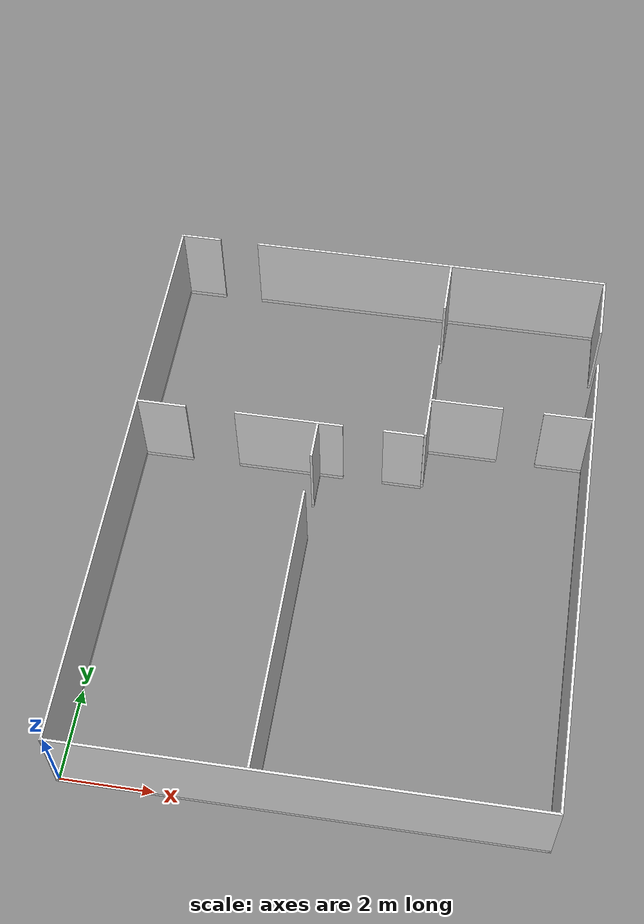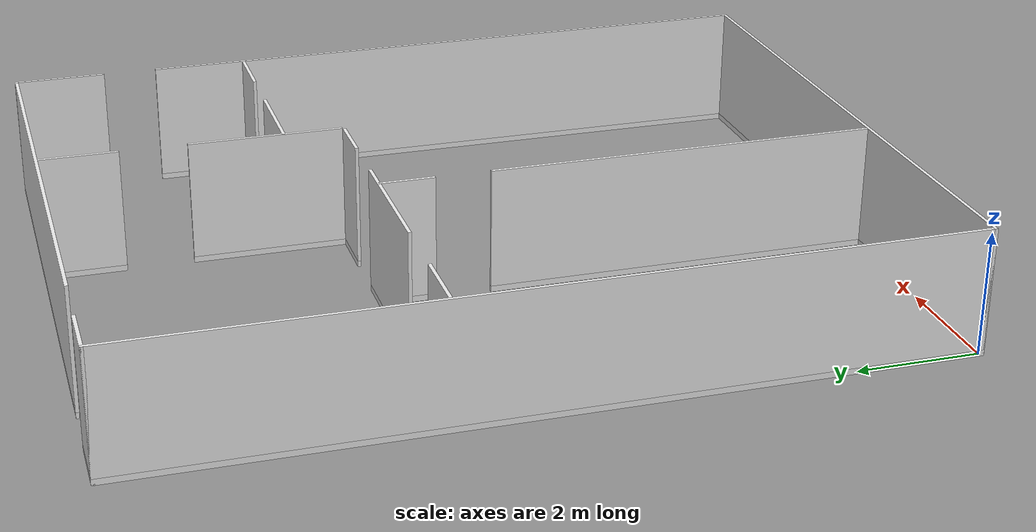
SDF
<sdf version="1.6">
 <world name="default">
  <model name="inside_wall">
   <link name="link">
    <inertial>
     <mass>50</mass>
     <inertia><ixx>1</ixx><ixy>0</ixy><ixz>0</ixz><iyy>1</iyy><iyz>0</iyz><izz>1</izz></inertia>
    </inertial>
    <visual name="x05y01_08_bottom_frame">
     <pose>4.075 3.215 0.05 0 -0 0</pose>
     <geometry><box><size>0.055 6.43 0.1</size></box></geometry>
     <material>
      <script><uri>model://base_materials/color/scripts</uri><name>hsr_color/white</name></script>
     </material>
    </visual>
    <collision name="x05y01_08_collision_bottom_frame">
     <pose>4.075 3.215 0.05 0 -0 0</pose>
     <geometry><box><size>0.055 6.43 0.1</size></box></geometry>
    </collision>
    <visual name="x05y01_08_wall">
     <pose>4.075 3.215 1.095 0 -0 0</pose>
     <geometry><box><size>0.055 6.43 1.99</size></box></geometry>
     <material>
      <script>
       <uri>model://base_materials/wall/scripts</uri>
       <uri>model://base_materials/wall/textures</uri>
       <name>wall/white_noise</name>
      </script>
     </material>
    </visual>
    <collision name="x05y01_08_collision_wall">
     <pose>4.075 3.215 1.095 0 -0 0</pose>
     <geometry><box><size>0.055 6.43 1.99</size></box></geometry>
    </collision>
    <visual name="x05y10_bottom_frame">
     <pose>4.075 7.78 0.05 0 -0 0</pose>
     <geometry><box><size>0.055 0.9 0.1</size></box></geometry>
     <material>
      <script><uri>model://base_materials/color/scripts</uri><name>hsr_color/white</name></script>
     </material>
    </visual>
    <collision name="x05y10_collision_bottom_frame">
     <pose>4.075 7.78 0.05 0 -0 0</pose>
     <geometry><box><size>0.055 0.9 0.1</size></box></geometry>
    </collision>
    <visual name="x05y10_wall">
     <pose>4.075 7.78 1.095 0 -0 0</pose>
     <geometry><box><size>0.055 0.9 1.99</size></box></geometry>
     <material>
      <script>
       <uri>model://base_materials/wall/scripts</uri>
       <uri>model://base_materials/wall/textures</uri>
       <name>wall/white_noise</name>
      </script>
     </material>
    </visual>
    <collision name="x05y10_collision_wall">
     <pose>4.075 7.78 1.095 0 -0 0</pose>
     <geometry><box><size>0.055 0.9 1.99</size></box></geometry>
    </collision>
    <visual name="x01_02_y09_bottom_frame">
     <pose>0.55 8.23 0.05 0 -0 1.5708</pose>
     <geometry><box><size>0.055 1.1 0.1</size></box></geometry>
     <material>
      <script><uri>model://base_materials/color/scripts</uri><name>hsr_color/white</name></script>
     </material>
    </visual>
    <collision name="x01_02_y09_collision_bottom_frame">
     <pose>0.55 8.23 0.05 0 -0 1.5708</pose>
     <geometry><box><size>0.055 1.1 0.1</size></box></geometry>
    </collision>
    <visual name="x01_02_y09_wall">
     <pose>0.55 8.23 1.095 0 -0 1.5708</pose>
     <geometry><box><size>0.055 1.1 1.99</size></box></geometry>
     <material>
      <script>
       <uri>model://base_materials/wall/scripts</uri>
       <uri>model://base_materials/wall/textures</uri>
       <name>wall/white_noise</name>
      </script>
     </material>
    </visual>
    <collision name="x01_02_y09_collision_wall">
     <pose>0.55 8.23 1.095 0 -0 1.5708</pose>
     <geometry><box><size>0.055 1.1 1.99</size></box></geometry>
    </collision>
    <visual name="x04_07_y09_bottom_frame">
     <pose>3.42 8.23 0.05 0 -0 1.5708</pose>
     <geometry><box><size>0.055 2.44 0.1</size></box></geometry>
     <material>
      <script><uri>model://base_materials/color/scripts</uri><name>hsr_color/white</name></script>
     </material>
    </visual>
    <collision name="x04_07_y09_collision_bottom_frame">
     <pose>3.42 8.23 0.05 0 -0 1.5708</pose>
     <geometry><box><size>0.055 2.44 0.1</size></box></geometry>
    </collision>
    <visual name="x04_07_y09_wall">
     <pose>3.42 8.23 1.095 0 -0 1.5708</pose>
     <geometry><box><size>0.055 2.44 1.99</size></box></geometry>
     <material>
      <script>
       <uri>model://base_materials/wall/scripts</uri>
       <uri>model://base_materials/wall/textures</uri>
       <name>wall/white_noise</name>
      </script>
     </material>
    </visual>
    <collision name="x04_07_y09_collision_wall">
     <pose>3.42 8.23 1.095 0 -0 1.5708</pose>
     <geometry><box><size>0.055 2.44 1.99</size></box></geometry>
    </collision>
    <visual name="x08y10a_bottom_frame">
     <pose>5.9925 8.23 0.05 0 -0 1.5708</pose>
     <geometry><box><size>0.055 0.9 0.1</size></box></geometry>
     <material>
      <script><uri>model://base_materials/color/scripts</uri><name>hsr_color/white</name></script>
     </material>
    </visual>
    <collision name="x08y10a_collision_bottom_frame">
     <pose>5.9925 8.23 0.05 0 -0 1.5708</pose>
     <geometry><box><size>0.055 0.9 0.1</size></box></geometry>
    </collision>
    <visual name="x08y10a_wall">
     <pose>5.9925 8.23 1.095 0 -0 1.5708</pose>
     <geometry><box><size>0.055 0.9 1.99</size></box></geometry>
     <material>
      <script>
       <uri>model://base_materials/wall/scripts</uri>
       <uri>model://base_materials/wall/textures</uri>
       <name>wall/white_noise</name>
      </script>
     </material>
    </visual>
    <collision name="x08y10a_collision_wall">
     <pose>5.9925 8.23 1.095 0 -0 1.5708</pose>
     <geometry><box><size>0.055 0.9 1.99</size></box></geometry>
    </collision>
    <visual name="x08y10a_bottom_frame">
     <pose>5.9925 8.23 0.05 0 -0 1.5708</pose>
     <geometry><box><size>0.055 0.9 0.1</size></box></geometry>
     <material>
      <script><uri>model://base_materials/color/scripts</uri><name>hsr_color/white</name></script>
     </material>
    </visual>
    <collision name="x08y10a_collision_bottom_frame">
     <pose>5.9925 8.23 0.05 0 -0 1.5708</pose>
     <geometry><box><size>0.055 0.9 0.1</size></box></geometry>
    </collision>
    <visual name="x08y10a_wall">
     <pose>5.9925 8.23 1.095 0 -0 1.5708</pose>
     <geometry><box><size>0.055 0.9 1.99</size></box></geometry>
     <material>
      <script>
       <uri>model://base_materials/wall/scripts</uri>
       <uri>model://base_materials/wall/textures</uri>
       <name>wall/white_noise</name>
      </script>
     </material>
    </visual>
    <collision name="x08y10a_collision_wall">
     <pose>5.9925 8.23 1.095 0 -0 1.5708</pose>
     <geometry><box><size>0.055 0.9 1.99</size></box></geometry>
    </collision>
    <visual name="x08y14_15_bottom_frame">
     <pose>6.47 12.54 0.05 0 -0 0</pose>
     <geometry><box><size>0.055 1.28 0.1</size></box></geometry>
     <material>
      <script><uri>model://base_materials/color/scripts</uri><name>hsr_color/white</name></script>
     </material>
    </visual>
    <collision name="x08y14_15_collision_bottom_frame">
     <pose>6.47 12.54 0.05 0 -0 0</pose>
     <geometry><box><size>0.055 1.28 0.1</size></box></geometry>
    </collision>
    <visual name="x08y14_15_wall">
     <pose>6.47 12.54 1.095 0 -0 0</pose>
     <geometry><box><size>0.055 1.28 1.99</size></box></geometry>
     <material>
      <script>
       <uri>model://base_materials/wall/scripts</uri>
       <uri>model://base_materials/wall/textures</uri>
       <name>wall/white_noise</name>
      </script>
     </material>
    </visual>
    <collision name="x08y14_15_collision_wall">
     <pose>6.47 12.54 1.095 0 -0 0</pose>
     <geometry><box><size>0.055 1.28 1.99</size></box></geometry>
    </collision>
    <visual name="x08y10b_12_bottom_frame">
     <pose>6.47 9.52875 0.05 0 -0 0</pose>
     <geometry><box><size>0.055 2.5425 0.1</size></box></geometry>
     <material>
      <script><uri>model://base_materials/color/scripts</uri><name>hsr_color/white</name></script>
     </material>
    </visual>
    <collision name="x08y10b_12_collision_bottom_frame">
     <pose>6.47 9.52875 0.05 0 -0 0</pose>
     <geometry><box><size>0.055 2.5425 0.1</size></box></geometry>
    </collision>
    <visual name="x08y10b_12_wall">
     <pose>6.47 9.52875 1.095 0 -0 0</pose>
     <geometry><box><size>0.055 2.5425 1.99</size></box></geometry>
     <material>
      <script>
       <uri>model://base_materials/wall/scripts</uri>
       <uri>model://base_materials/wall/textures</uri>
       <name>wall/white_noise</name>
      </script>
     </material>
    </visual>
    <collision name="x08y10b_12_collision_wall">
     <pose>6.47 9.52875 1.095 0 -0 0</pose>
     <geometry><box><size>0.055 2.5425 1.99</size></box></geometry>
    </collision>
    <visual name="x08_09y11b_bottom_frame">
     <pose>7.284 9.23 0.05 0 -0 1.5708</pose>
     <geometry><box><size>0.055 1.632 0.1</size></box></geometry>
     <material>
      <script><uri>model://base_materials/color/scripts</uri><name>hsr_color/white</name></script>
     </material>
    </visual>
    <collision name="x08_09y11b_collision_bottom_frame">
     <pose>7.284 9.23 0.05 0 -0 1.5708</pose>
     <geometry><box><size>0.055 1.632 0.1</size></box></geometry>
    </collision>
    <visual name="x08_09y11b_wall">
     <pose>7.284 9.23 1.095 0 -0 1.5708</pose>
     <geometry><box><size>0.055 1.632 1.99</size></box></geometry>
     <material>
      <script>
       <uri>model://base_materials/wall/scripts</uri>
       <uri>model://base_materials/wall/textures</uri>
       <name>wall/white_noise</name>
      </script>
     </material>
    </visual>
    <collision name="x08_09y11b_collision_wall">
     <pose>7.284 9.23 1.095 0 -0 1.5708</pose>
     <geometry><box><size>0.055 1.632 1.99</size></box></geometry>
    </collision>
    <visual name="x11_12y11_bottom_frame">
     <pose>9.5375 9.23 0.05 0 -0 1.5708</pose>
     <geometry><box><size>0.055 1.075 0.1</size></box></geometry>
     <material>
      <script><uri>model://base_materials/color/scripts</uri><name>hsr_color/white</name></script>
     </material>
    </visual>
    <collision name="x11_12y11_collision_bottom_frame">
     <pose>9.5375 9.23 0.05 0 -0 1.5708</pose>
     <geometry><box><size>0.055 1.075 0.1</size></box></geometry>
    </collision>
    <visual name="x11_12y11_wall">
     <pose>9.5375 9.23 1.095 0 -0 1.5708</pose>
     <geometry><box><size>0.055 1.075 1.99</size></box></geometry>
     <material>
      <script>
       <uri>model://base_materials/wall/scripts</uri>
       <uri>model://base_materials/wall/textures</uri>
       <name>wall/white_noise</name>
      </script>
     </material>
    </visual>
    <collision name="x11_12y11_collision_wall">
     <pose>9.5375 9.23 1.095 0 -0 1.5708</pose>
     <geometry><box><size>0.055 1.075 1.99</size></box></geometry>
    </collision>
    <velocity_decay><linear>0</linear><angular>0</angular></velocity_decay>
   </link>
   <static>1</static>
  </model>
  <model name="outside_wall">
   <link name="link">
    <inertial>
     <mass>50</mass>
     <inertia><ixx>1</ixx><ixy>0</ixy><ixz>0</ixz><iyy>1</iyy><iyz>0</iyz><izz>1</izz></inertia>
    </inertial>
    <visual name="x00_13y00_bottom_frame">
     <pose>5.0375 -0.0275 0.05 0 -0 0</pose>
     <geometry><box><size>10.185 0.055 0.1</size></box></geometry>
     <material>
      <script><uri>model://base_materials/color/scripts</uri><name>hsr_color/white</name></script>
     </material>
    </visual>
    <collision name="x00_13y00_collision_bottom_frame">
     <pose>5.0375 -0.0275 0.05 0 -0 0</pose>
     <geometry><box><size>10.185 0.055 0.1</size></box></geometry>
    </collision>
    <visual name="wall_x00_13y00">
     <pose>5.0375 -0.0275 1.095 0 -0 0</pose>
     <geometry><box><size>10.185 0.055 1.99</size></box></geometry>
     <material>
      <script>
       <uri>model://base_materials/wall/scripts</uri>
       <uri>model://base_materials/wall/textures</uri>
       <name>wall/white_noise</name>
      </script>
     </material>
    </visual>
    <collision name="wall_x00_13y00">
     <pose>5.0375 -0.002 1.095 0 -0 0</pose>
     <geometry><box><size>10.08 0.055 1.99</size></box></geometry>
    </collision>
    <visual name="x00y00_15_bottom_frame">
     <pose>-0.0275 6.59 0.05 0 -0 0</pose>
     <geometry><box><size>0.055 13.29 0.1</size></box></geometry>
     <material>
      <script><uri>model://base_materials/color/scripts</uri><name>hsr_color/white</name></script>
     </material>
    </visual>
    <collision name="x00y00_15_collision_bottom_frame">
     <pose>-0.0275 6.59 0.05 0 -0 0</pose>
     <geometry><box><size>0.055 13.29 0.1</size></box></geometry>
    </collision>
    <visual name="wall_x00y00_15">
     <pose>-0.0275 6.59 1.095 0 -0 0</pose>
     <geometry><box><size>0.055 13.29 1.99</size></box></geometry>
     <material>
      <script>
       <uri>model://base_materials/wall/scripts</uri>
       <uri>model://base_materials/wall/textures</uri>
       <name>wall/white_noise</name>
      </script>
     </material>
    </visual>
    <collision name="wall_x00y00_x00y15">
     <pose>-0.002 6.59 1.095 0 -0 0</pose>
     <geometry><box><size>0.002 13.29 1.99</size></box></geometry>
    </collision>
    <visual name="x13y00_12_bottom_frame">
     <pose>10.1025 5.3725 0.05 0 -0 0</pose>
     <geometry><box><size>0.055 10.855 0.1</size></box></geometry>
     <material>
      <script><uri>model://base_materials/color/scripts</uri><name>hsr_color/white</name></script>
     </material>
    </visual>
    <collision name="x13y00_12_collision_bottom_frame">
     <pose>10.1025 5.3725 0.05 0 -0 0</pose>
     <geometry><box><size>0.055 10.855 0.1</size></box></geometry>
    </collision>
    <visual name="wall_x13y00_12">
     <pose>10.1025 5.3725 1.095 0 -0 0</pose>
     <geometry><box><size>0.055 10.855 1.99</size></box></geometry>
     <material>
      <script>
       <uri>model://base_materials/wall/scripts</uri>
       <uri>model://base_materials/wall/textures</uri>
       <name>wall/white_noise</name>
      </script>
     </material>
    </visual>
    <collision name="wall_x13y00_12">
     <pose>10.1025 5.3725 1.095 0 -0 0</pose>
     <geometry><box><size>0.055 10.855 1.99</size></box></geometry>
    </collision>
    <visual name="x13y14_16_bottom_frame">
     <pose>10.1025 12.4675 0.05 0 -0 0</pose>
     <geometry><box><size>0.055 1.535 0.1</size></box></geometry>
     <material>
      <script><uri>model://base_materials/color/scripts</uri><name>hsr_color/white</name></script>
     </material>
    </visual>
    <collision name="x13y14_16_collision_bottom_frame">
     <pose>10.1025 12.4675 0.05 0 -0 0</pose>
     <geometry><box><size>0.055 1.535 0.1</size></box></geometry>
    </collision>
    <visual name="wall_x13y14_x13y16">
     <pose>10.1025 12.4675 1.095 0 -0 0</pose>
     <geometry><box><size>0.055 1.535 1.99</size></box></geometry>
     <material>
      <script>
       <uri>model://base_materials/wall/scripts</uri>
       <uri>model://base_materials/wall/textures</uri>
       <name>wall/white_noise</name>
      </script>
     </material>
    </visual>
    <collision name="wall_x13y14_x13y16">
     <pose>10.1025 12.4675 1.095 0 -0 0</pose>
     <geometry><box><size>0.055 1.535 1.99</size></box></geometry>
    </collision>
    <visual name="x00_01y16_bottom_frame">
     <pose>0.4225 13.2075 0.05 0 -0 0</pose>
     <geometry><box><size>0.955 0.055 0.1</size></box></geometry>
     <material>
      <script><uri>model://base_materials/color/scripts</uri><name>hsr_color/white</name></script>
     </material>
    </visual>
    <collision name="x00_01y16_collision_bottom_frame">
     <pose>0.4225 13.2075 0.05 0 -0 0</pose>
     <geometry><box><size>0.955 0.055 0.1</size></box></geometry>
    </collision>
    <visual name="wall_x00_01y16">
     <pose>0.4225 13.2075 1.095 0 -0 0</pose>
     <geometry><box><size>0.955 0.055 1.99</size></box></geometry>
     <material>
      <script>
       <uri>model://base_materials/wall/scripts</uri>
       <uri>model://base_materials/wall/textures</uri>
       <name>wall/white_noise</name>
      </script>
     </material>
    </visual>
    <collision name="wall_x00_x01y16">
     <pose>0.4225 13.2075 1.095 0 -0 0</pose>
     <geometry><box><size>0.955 0.055 1.99</size></box></geometry>
    </collision>
    <visual name="x03_13y16_bottom_frame">
     <pose>5.965 13.2075 0.05 0 -0 0</pose>
     <geometry><box><size>8.33 0.05 0.1</size></box></geometry>
     <material>
      <script><uri>model://base_materials/color/scripts</uri><name>hsr_color/white</name></script>
     </material>
    </visual>
    <collision name="x03_13y16_collision_bottom_frame">
     <pose>5.965 13.2075 0.05 0 -0 0</pose>
     <geometry><box><size>8.33 0.05 0.1</size></box></geometry>
    </collision>
    <visual name="wall_x03_13y16">
     <pose>5.965 13.2075 1.095 0 -0 0</pose>
     <geometry><box><size>8.33 0.055 1.99</size></box></geometry>
     <material>
      <script>
       <uri>model://base_materials/wall/scripts</uri>
       <uri>model://base_materials/wall/textures</uri>
       <name>wall/white_noise</name>
      </script>
     </material>
    </visual>
    <collision name="wall_x03_13y16">
     <pose>5.965 13.2075 1.095 0 -0 0</pose>
     <geometry><box><size>8.33 0.055 1.99</size></box></geometry>
    </collision>
    <velocity_decay><linear>0</linear><angular>0</angular></velocity_decay>
   </link>
   <static>1</static>
  </model>
 </world>
</sdf>
